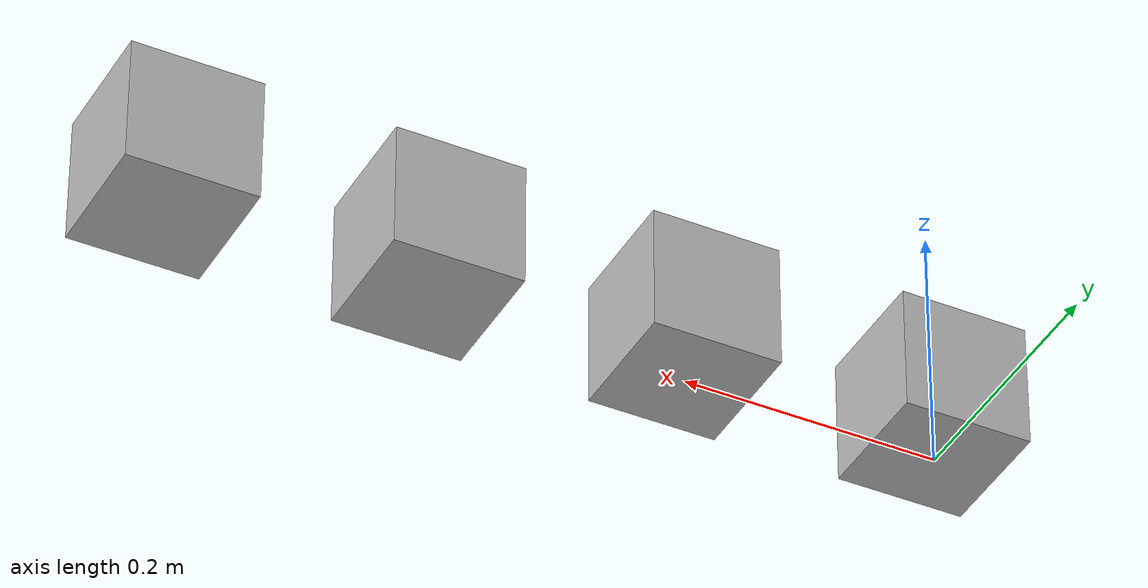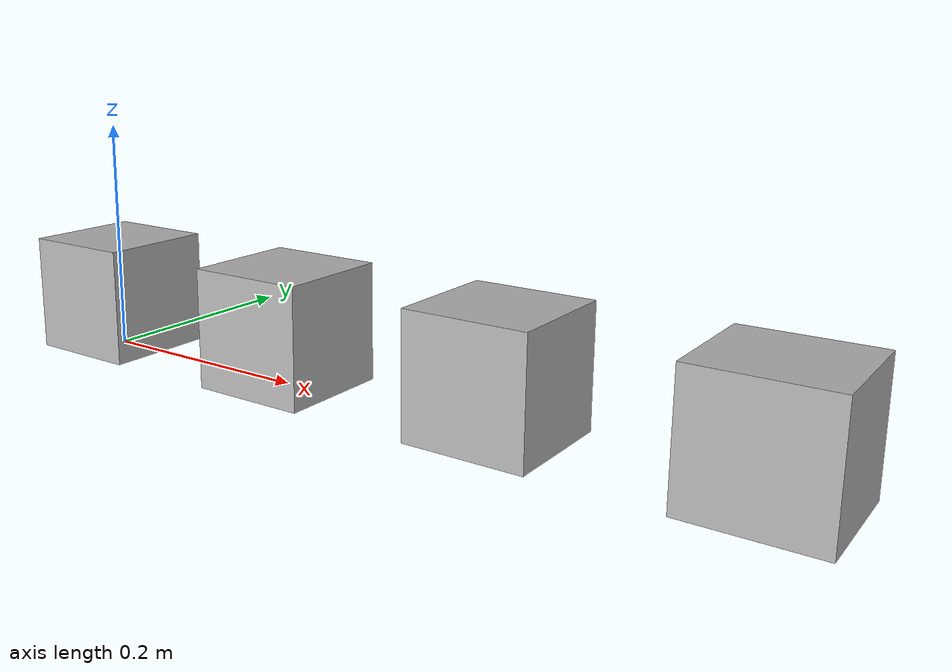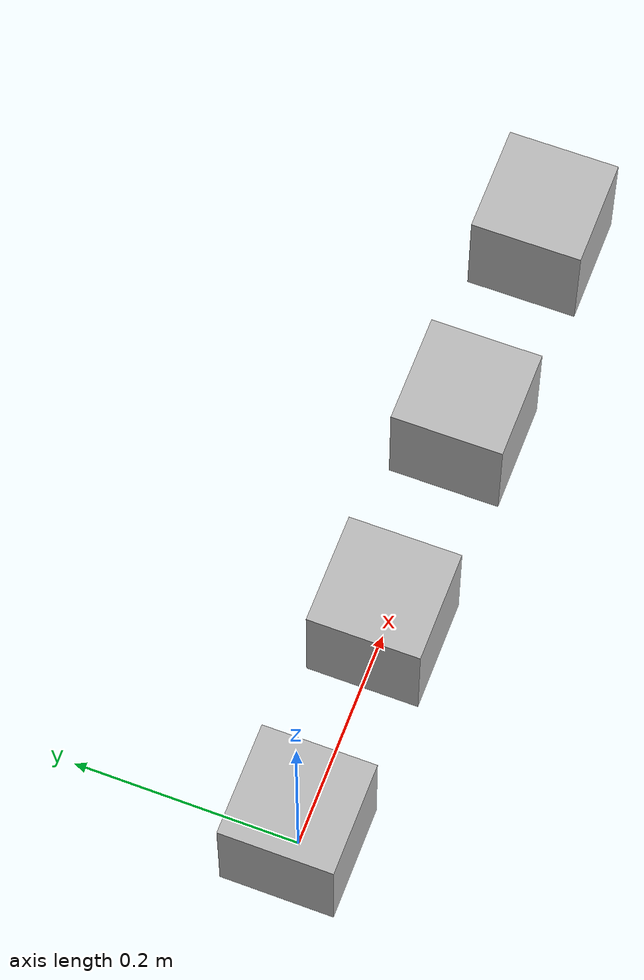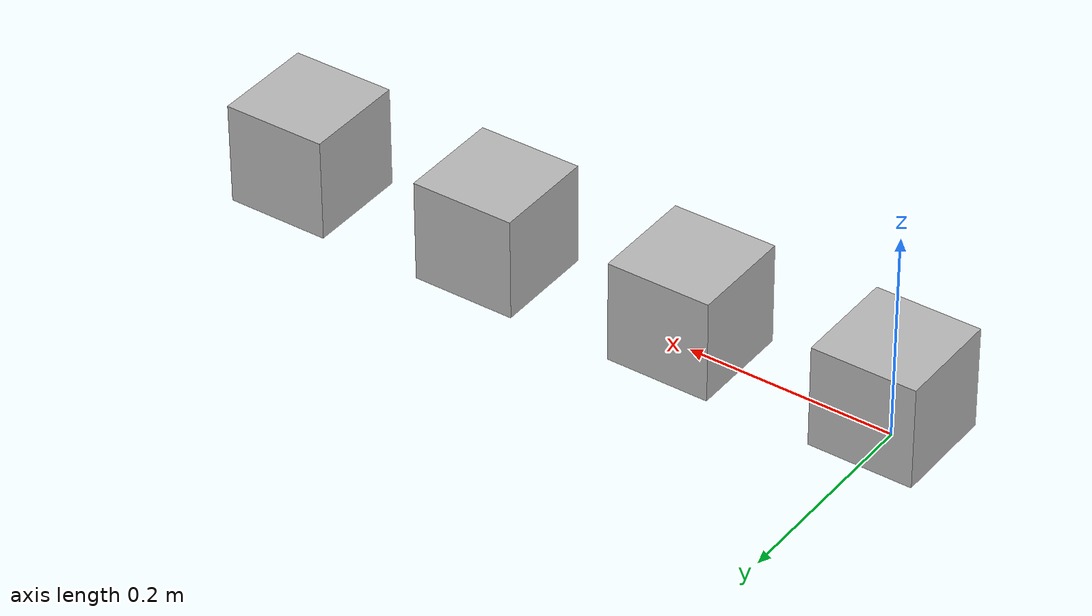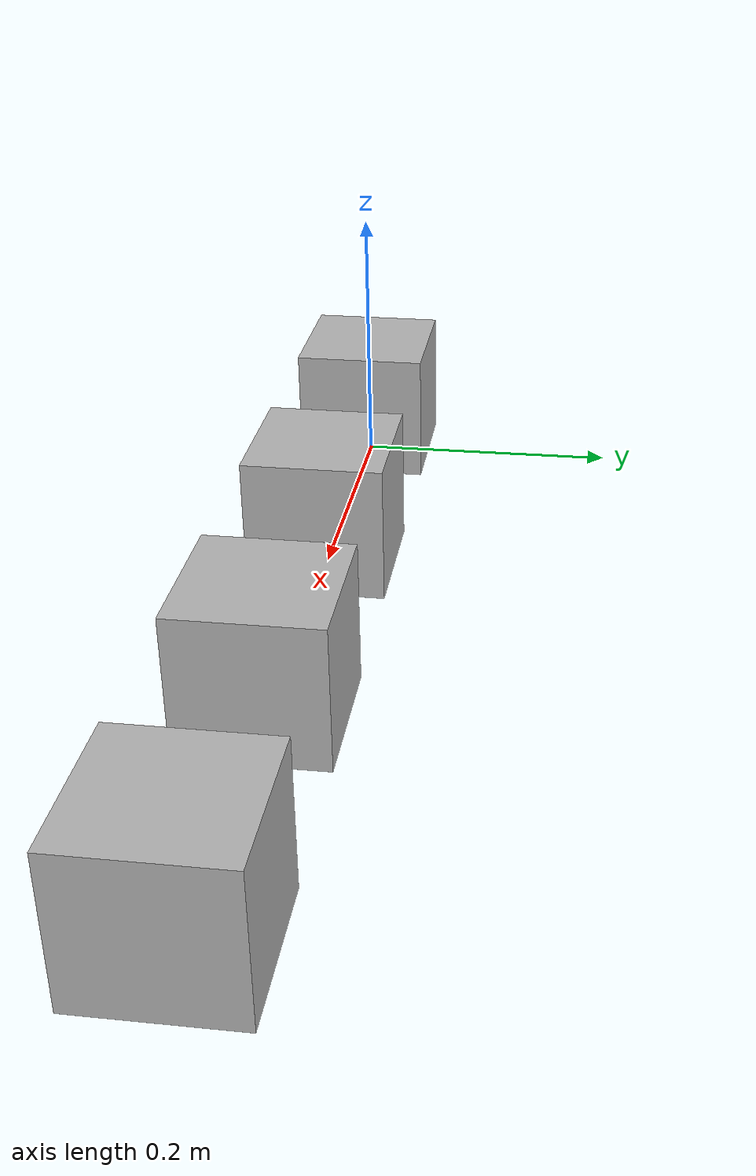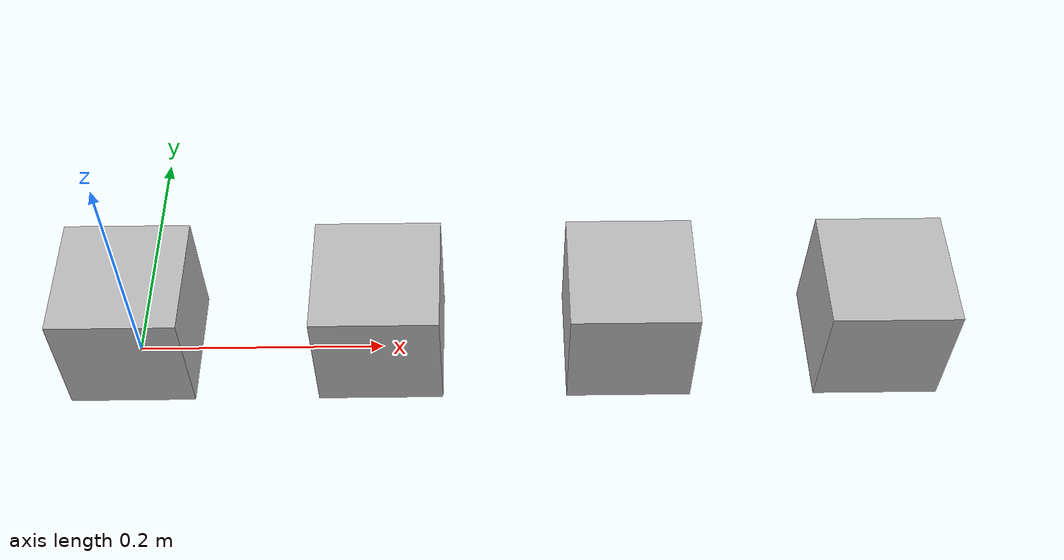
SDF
<?xml version='1.0'?>
<sdf version='1.6'>
		<model name="IP">
			<self_collide>true</self_collide>
			<pose>0.0 0.0 0.0 0.0 0.0 0.0</pose>
			<!-- Start of parts of the pmodel IP -->
				<!-- Start of declarations for part "IP::a::0" -->
					<!-- Start of parts of part "IP::a::0" -->
					<!-- End of parts of part "IP::a::0" -->

					<!-- Start of links of part "IP::a::0" -->
					<!-- link full name is IP::a::0::L1 -->
					<link name="1-L1">
							<pose>0.0 0.0 0.05000000074505806 0.0 0.0 0.0</pose>
							<inertial>
								<pose>0.0 0.0 0.0 0.0 0.0 0.0</pose>
								<inertia>
									<ixx>1.0</ixx>
									<ixy>0.0</ixy>
									<ixz>0.0</ixz>
									<iyy>1.0</iyy>
									<iyz>0.0</iyz>
									<izz>1.0</izz>
								</inertia>
								<mass>1.0</mass>
							</inertial>
							<!-- body full name is IP::a::0::L1::B -->
							<collision name="1--B">
								<laser_retro>0.0</laser_retro>
								<pose>0.0 0.0 0.0 0.0 0.0 0.0</pose>
								<geometry>
									<box>
										<size>0.10000000149011612 0.10000000149011612 0.10000000149011612</size>
									</box>
								</geometry>
								<surface>
									<bounce>
										<restitution_coefficient>0.0</restitution_coefficient>
										<threshold>100000.0</threshold>
									</bounce>
									<friction>
										<ode>
											<mu>1.0</mu>
											<mu2>1.0</mu2>
											<fdir1>0.0 0.0 0.0</fdir1>
											<slip1>0.0</slip1>
											<slip2>0.0</slip2>
										</ode>
										<torsional>
											<coefficient>1.0</coefficient>
											<surface_radius>0.0</surface_radius>
										</torsional>
									</friction>
								</surface>
							</collision>
							<visual name="1--B">
								<laser_retro>0.0</laser_retro>
								<pose>0.0 0.0 0.0 0.0 0.0 0.0</pose>
								<geometry>
									<box>
										<size>0.10000000149011612 0.10000000149011612 0.10000000149011612</size>
									</box>
								</geometry>
								<surface>
									<bounce>
										<restitution_coefficient>0.0</restitution_coefficient>
										<threshold>100000.0</threshold>
									</bounce>
									<friction>
										<ode>
											<mu>1.0</mu>
											<mu2>1.0</mu2>
											<fdir1>0.0 0.0 0.0</fdir1>
											<slip1>0.0</slip1>
											<slip2>0.0</slip2>
										</ode>
										<torsional>
											<coefficient>1.0</coefficient>
											<surface_radius>0.0</surface_radius>
										</torsional>
									</friction>
								</surface>
							</visual>
					</link>
					<!-- End of links of part "IP::a::0" -->

					<!-- Start of joints of part "IP::a::0" -->
					<!-- End of joints of part "IP::a::0" -->

					<!-- Start of fixed connections of part "IP::a::0" -->

					<!-- End of fixed connections of part "IP::a::0" -->
				<!-- End of declarations for part "IP::a::0" -->
				<!-- Start of declarations for part "IP::a::1" -->
					<!-- Start of parts of part "IP::a::1" -->
					<!-- End of parts of part "IP::a::1" -->

					<!-- Start of links of part "IP::a::1" -->
					<!-- link full name is IP::a::1::L1 -->
					<link name="2-L1">
							<pose>0.20000000298023224 0.0 0.05000000074505806 0.0 -0.0 0.0</pose>
							<inertial>
								<pose>0.0 0.0 0.0 0.0 0.0 0.0</pose>
								<inertia>
									<ixx>1.0</ixx>
									<ixy>0.0</ixy>
									<ixz>0.0</ixz>
									<iyy>1.0</iyy>
									<iyz>0.0</iyz>
									<izz>1.0</izz>
								</inertia>
								<mass>1.0</mass>
							</inertial>
							<!-- body full name is IP::a::1::L1::B -->
							<collision name="2--B">
								<laser_retro>0.0</laser_retro>
								<pose>0.0 0.0 0.0 0.0 0.0 0.0</pose>
								<geometry>
									<box>
										<size>0.10000000149011612 0.10000000149011612 0.10000000149011612</size>
									</box>
								</geometry>
								<surface>
									<bounce>
										<restitution_coefficient>0.0</restitution_coefficient>
										<threshold>100000.0</threshold>
									</bounce>
									<friction>
										<ode>
											<mu>1.0</mu>
											<mu2>1.0</mu2>
											<fdir1>0.0 0.0 0.0</fdir1>
											<slip1>0.0</slip1>
											<slip2>0.0</slip2>
										</ode>
										<torsional>
											<coefficient>1.0</coefficient>
											<surface_radius>0.0</surface_radius>
										</torsional>
									</friction>
								</surface>
							</collision>
							<visual name="2--B">
								<laser_retro>0.0</laser_retro>
								<pose>0.0 0.0 0.0 0.0 0.0 0.0</pose>
								<geometry>
									<box>
										<size>0.10000000149011612 0.10000000149011612 0.10000000149011612</size>
									</box>
								</geometry>
								<surface>
									<bounce>
										<restitution_coefficient>0.0</restitution_coefficient>
										<threshold>100000.0</threshold>
									</bounce>
									<friction>
										<ode>
											<mu>1.0</mu>
											<mu2>1.0</mu2>
											<fdir1>0.0 0.0 0.0</fdir1>
											<slip1>0.0</slip1>
											<slip2>0.0</slip2>
										</ode>
										<torsional>
											<coefficient>1.0</coefficient>
											<surface_radius>0.0</surface_radius>
										</torsional>
									</friction>
								</surface>
							</visual>
					</link>
					<!-- End of links of part "IP::a::1" -->

					<!-- Start of joints of part "IP::a::1" -->
					<!-- End of joints of part "IP::a::1" -->

					<!-- Start of fixed connections of part "IP::a::1" -->

					<!-- End of fixed connections of part "IP::a::1" -->
				<!-- End of declarations for part "IP::a::1" -->
				<!-- Start of declarations for part "IP::a::2" -->
					<!-- Start of parts of part "IP::a::2" -->
					<!-- End of parts of part "IP::a::2" -->

					<!-- Start of links of part "IP::a::2" -->
					<!-- link full name is IP::a::2::L1 -->
					<link name="3-L1">
							<pose>0.4000000059604645 0.0 0.05000000074505806 0.0 -0.0 0.0</pose>
							<inertial>
								<pose>0.0 0.0 0.0 0.0 0.0 0.0</pose>
								<inertia>
									<ixx>1.0</ixx>
									<ixy>0.0</ixy>
									<ixz>0.0</ixz>
									<iyy>1.0</iyy>
									<iyz>0.0</iyz>
									<izz>1.0</izz>
								</inertia>
								<mass>1.0</mass>
							</inertial>
							<!-- body full name is IP::a::2::L1::B -->
							<collision name="3--B">
								<laser_retro>0.0</laser_retro>
								<pose>0.0 0.0 0.0 0.0 0.0 0.0</pose>
								<geometry>
									<box>
										<size>0.10000000149011612 0.10000000149011612 0.10000000149011612</size>
									</box>
								</geometry>
								<surface>
									<bounce>
										<restitution_coefficient>0.0</restitution_coefficient>
										<threshold>100000.0</threshold>
									</bounce>
									<friction>
										<ode>
											<mu>1.0</mu>
											<mu2>1.0</mu2>
											<fdir1>0.0 0.0 0.0</fdir1>
											<slip1>0.0</slip1>
											<slip2>0.0</slip2>
										</ode>
										<torsional>
											<coefficient>1.0</coefficient>
											<surface_radius>0.0</surface_radius>
										</torsional>
									</friction>
								</surface>
							</collision>
							<visual name="3--B">
								<laser_retro>0.0</laser_retro>
								<pose>0.0 0.0 0.0 0.0 0.0 0.0</pose>
								<geometry>
									<box>
										<size>0.10000000149011612 0.10000000149011612 0.10000000149011612</size>
									</box>
								</geometry>
								<surface>
									<bounce>
										<restitution_coefficient>0.0</restitution_coefficient>
										<threshold>100000.0</threshold>
									</bounce>
									<friction>
										<ode>
											<mu>1.0</mu>
											<mu2>1.0</mu2>
											<fdir1>0.0 0.0 0.0</fdir1>
											<slip1>0.0</slip1>
											<slip2>0.0</slip2>
										</ode>
										<torsional>
											<coefficient>1.0</coefficient>
											<surface_radius>0.0</surface_radius>
										</torsional>
									</friction>
								</surface>
							</visual>
					</link>
					<!-- End of links of part "IP::a::2" -->

					<!-- Start of joints of part "IP::a::2" -->
					<!-- End of joints of part "IP::a::2" -->

					<!-- Start of fixed connections of part "IP::a::2" -->

					<!-- End of fixed connections of part "IP::a::2" -->
				<!-- End of declarations for part "IP::a::2" -->
				<!-- Start of declarations for part "IP::a::3" -->
					<!-- Start of parts of part "IP::a::3" -->
					<!-- End of parts of part "IP::a::3" -->

					<!-- Start of links of part "IP::a::3" -->
					<!-- link full name is IP::a::3::L1 -->
					<link name="4-L1">
							<pose>0.6000000089406967 0.0 0.05000000074505806 0.0 -0.0 0.0</pose>
							<inertial>
								<pose>0.0 0.0 0.0 0.0 0.0 0.0</pose>
								<inertia>
									<ixx>1.0</ixx>
									<ixy>0.0</ixy>
									<ixz>0.0</ixz>
									<iyy>1.0</iyy>
									<iyz>0.0</iyz>
									<izz>1.0</izz>
								</inertia>
								<mass>1.0</mass>
							</inertial>
							<!-- body full name is IP::a::3::L1::B -->
							<collision name="4--B">
								<laser_retro>0.0</laser_retro>
								<pose>0.0 0.0 0.0 0.0 0.0 0.0</pose>
								<geometry>
									<box>
										<size>0.10000000149011612 0.10000000149011612 0.10000000149011612</size>
									</box>
								</geometry>
								<surface>
									<bounce>
										<restitution_coefficient>0.0</restitution_coefficient>
										<threshold>100000.0</threshold>
									</bounce>
									<friction>
										<ode>
											<mu>1.0</mu>
											<mu2>1.0</mu2>
											<fdir1>0.0 0.0 0.0</fdir1>
											<slip1>0.0</slip1>
											<slip2>0.0</slip2>
										</ode>
										<torsional>
											<coefficient>1.0</coefficient>
											<surface_radius>0.0</surface_radius>
										</torsional>
									</friction>
								</surface>
							</collision>
							<visual name="4--B">
								<laser_retro>0.0</laser_retro>
								<pose>0.0 0.0 0.0 0.0 0.0 0.0</pose>
								<geometry>
									<box>
										<size>0.10000000149011612 0.10000000149011612 0.10000000149011612</size>
									</box>
								</geometry>
								<surface>
									<bounce>
										<restitution_coefficient>0.0</restitution_coefficient>
										<threshold>100000.0</threshold>
									</bounce>
									<friction>
										<ode>
											<mu>1.0</mu>
											<mu2>1.0</mu2>
											<fdir1>0.0 0.0 0.0</fdir1>
											<slip1>0.0</slip1>
											<slip2>0.0</slip2>
										</ode>
										<torsional>
											<coefficient>1.0</coefficient>
											<surface_radius>0.0</surface_radius>
										</torsional>
									</friction>
								</surface>
							</visual>
					</link>
					<!-- End of links of part "IP::a::3" -->

					<!-- Start of joints of part "IP::a::3" -->
					<!-- End of joints of part "IP::a::3" -->

					<!-- Start of fixed connections of part "IP::a::3" -->

					<!-- End of fixed connections of part "IP::a::3" -->
				<!-- End of declarations for part "IP::a::3" -->
			<!-- End of parts of the pmodel IP -->

			<!-- Start of links of the pmodel IP -->
			<!-- End of links of the pmodel IP -->

			<!-- Start of joints of the pmodel IP -->
			<!-- End of joints of the pmodel IP -->

			<!-- Start of fixed connections of the pmodel IP -->
			<!-- End of fixed connections of the pmodel IP -->
		</model>
</sdf>
